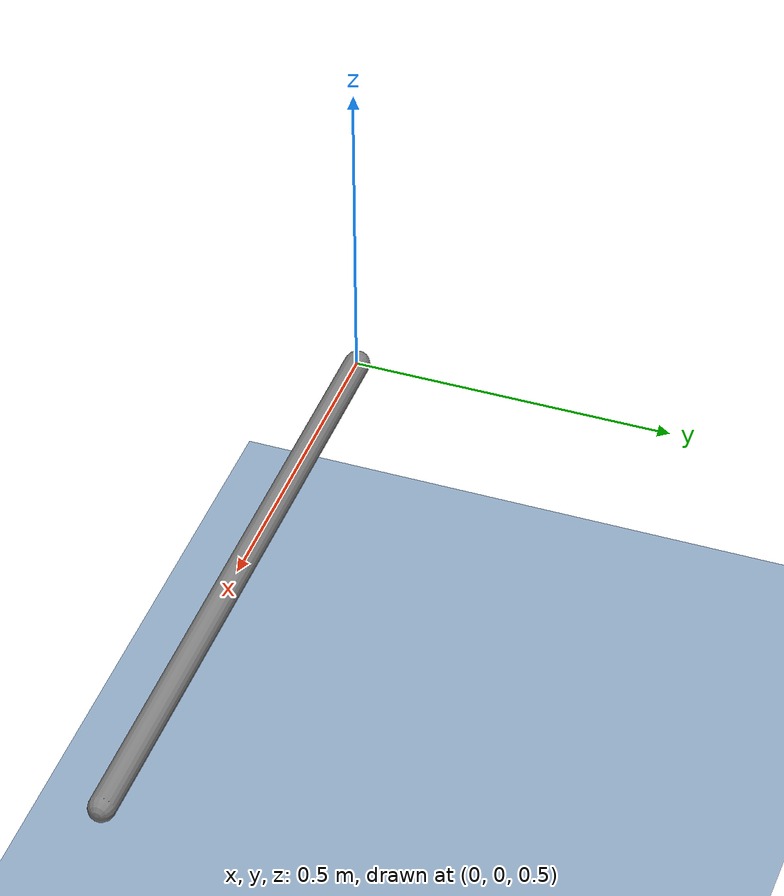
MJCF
<mujoco model="FullBodyModel_MuscleActuatedLowerLimb_TorqueActuatedUpperBody">
  <compiler angle="radian" boundmass="0.001" boundinertia="0.001"/>
  <option gravity="0 0 -10"/>

  <size njmax="1000" nconmax="400" nuser_jnt="1"/>

  <visual>
    <global offwidth="800" offheight="800"/>
    <headlight ambient="0.6 0.6 0.6"/>
    <rgba haze="0.35 0.45 0.55 1"/>
  </visual>

  <asset>
    <texture type="skybox" builtin="gradient" rgb1="0.6 0.8 1" rgb2="0 0 0" width="512" height="3072"/>
    <texture type="2d" name="texplane" builtin="checker" rgb1="0.5 0.6 0.7" rgb2="0.6 0.7 0.8" width="100" height="100"/>
    <material name="MatPlane" texture="texplane" texuniform="true" reflectance="0.2"/>
  </asset>

  <default>
    <joint stiffness="0" armature="0" damping="0"/>
  </default>

  <worldbody>
    <geom name="floor" size="0 0 0.125" type="plane" material="MatPlane" contype="1" conaffinity="1"/>
    <body name="rod" pos="0 0 0.5">
      <joint name="hinge" type="hinge" axis="0 1 0" limited="false"/>
      <geom name="rod_geom" type="capsule" fromto="0 0 0 1 0 0" size="0.02" mass="1.0"/>
    </body>
  </worldbody>

</mujoco>
